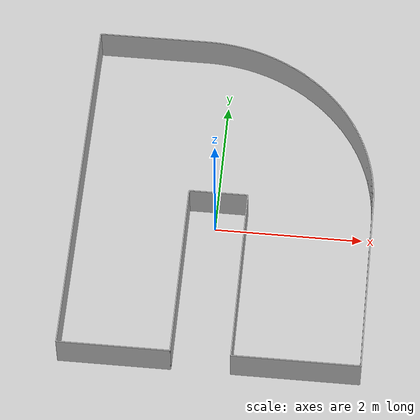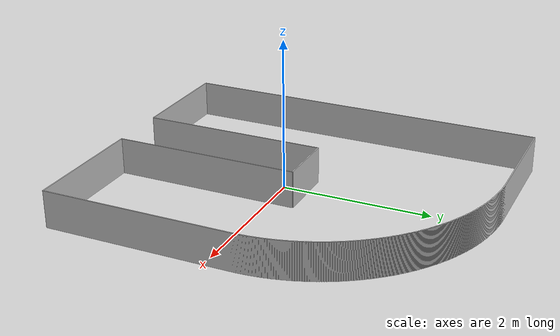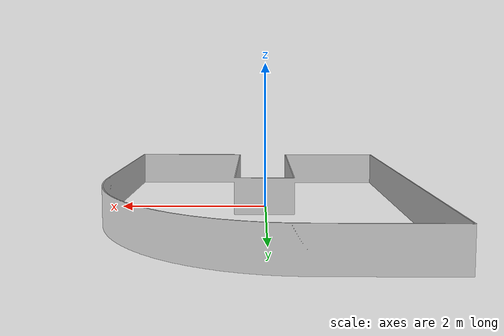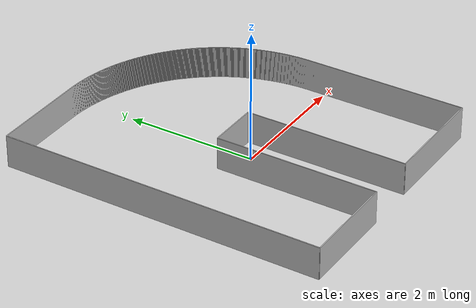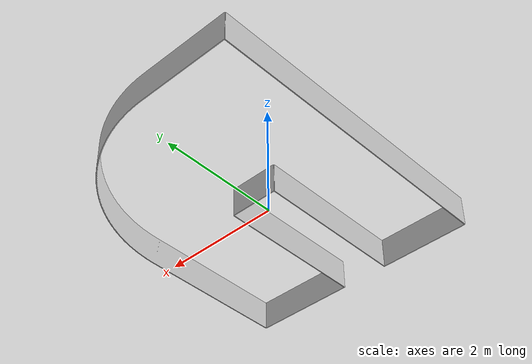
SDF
<?xml version="1.0" ?>
<sdf version="1.6">
  <model name="Arena">
    <static>true</static>
    <link name="link">
      <collision name="collision">
        <pose>0 0 0.212398 1.57 0 0</pose>
        <geometry>
          <mesh>
            <scale>1 1 1</scale>
            <uri>model://arena/meshes/arena.obj</uri>
          </mesh>
        </geometry>
      </collision>
      <visual name="visual">
        <pose>0 0 0.212398 1.57 0 0</pose>
        <geometry>
          <mesh>
            <scale>1 1 1</scale>
            <uri>model://arena/meshes/arena.obj</uri>
          </mesh>
        </geometry>
      </visual>
    </link>
  </model>
</sdf>
